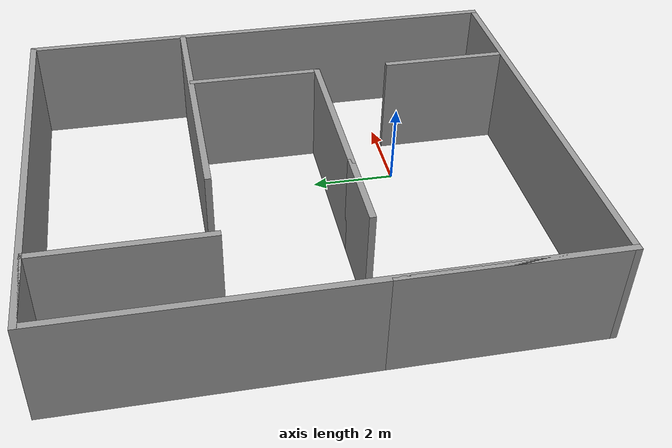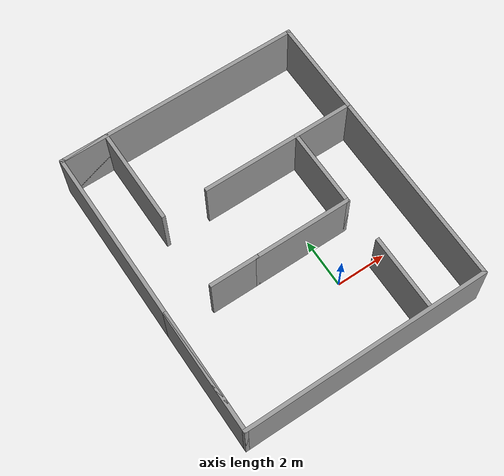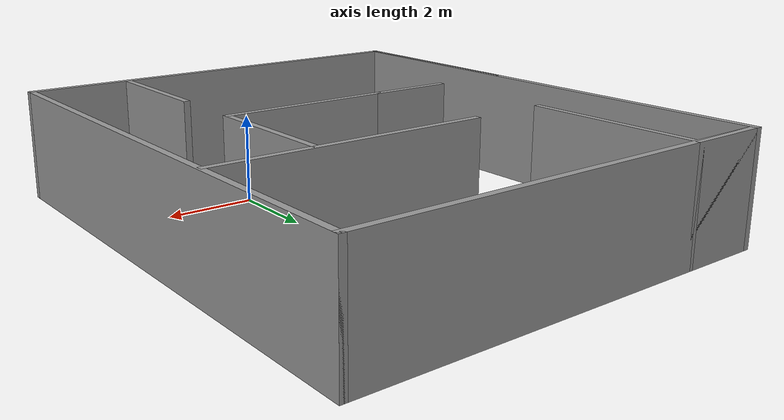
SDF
<?xml version='1.0'?>
<sdf version='1.7'>
  <model name='map'>
    <pose>-1.21374 2.77123 0 0 -0 0</pose>
    <link name='Wall_35'>
      <collision name='Wall_35_Collision'>
        <geometry>
          <box>
            <size>10 0.15 2.5</size>
          </box>
        </geometry>
        <pose>0 0 1.25 0 -0 0</pose>
      </collision>
      <visual name='Wall_35_Visual'>
        <pose>0 0 1.25 0 -0 0</pose>
        <geometry>
          <box>
            <size>10 0.15 2.5</size>
          </box>
        </geometry>
        <material>
          <script>
            <uri>file://media/materials/scripts/gazebo.material</uri>
            <name>Gazebo/Grey</name>
          </script>
          <ambient>1 1 1 1</ambient>
        </material>
        <meta>
          <layer>0</layer>
        </meta>
      </visual>
      <pose>0 5.925 0 0 -0 0</pose>
    </link>
    <link name='Wall_37'>
      <collision name='Wall_37_Collision'>
        <geometry>
          <box>
            <size>12 0.15 2.5</size>
          </box>
        </geometry>
        <pose>0 0 1.25 0 -0 0</pose>
      </collision>
      <visual name='Wall_37_Visual'>
        <pose>0 0 1.25 0 -0 0</pose>
        <geometry>
          <box>
            <size>12 0.15 2.5</size>
          </box>
        </geometry>
        <material>
          <script>
            <uri>file://media/materials/scripts/gazebo.material</uri>
            <name>Gazebo/Grey</name>
          </script>
          <ambient>1 1 1 1</ambient>
        </material>
        <meta>
          <layer>0</layer>
        </meta>
      </visual>
      <pose>4.925 0 0 0 -0 -1.5708</pose>
    </link>
    <link name='Wall_39'>
      <collision name='Wall_39_Collision'>
        <geometry>
          <box>
            <size>10 0.15 2.5</size>
          </box>
        </geometry>
        <pose>0 0 1.25 0 -0 0</pose>
      </collision>
      <visual name='Wall_39_Visual'>
        <pose>0 0 1.25 0 -0 0</pose>
        <geometry>
          <box>
            <size>10 0.15 2.5</size>
          </box>
        </geometry>
        <material>
          <script>
            <uri>file://media/materials/scripts/gazebo.material</uri>
            <name>Gazebo/Grey</name>
          </script>
          <ambient>1 1 1 1</ambient>
        </material>
        <meta>
          <layer>0</layer>
        </meta>
      </visual>
      <pose>0 -5.925 0 0 -0 3.14159</pose>
    </link>
    <link name='Wall_40'>
      <collision name='Wall_40_Collision'>
        <geometry>
          <box>
            <size>12 0.15 2.5</size>
          </box>
        </geometry>
        <pose>0 0 1.25 0 -0 0</pose>
      </collision>
      <visual name='Wall_40_Visual'>
        <pose>0 0 1.25 0 -0 0</pose>
        <geometry>
          <box>
            <size>12 0.15 2.5</size>
          </box>
        </geometry>
        <material>
          <script>
            <uri>file://media/materials/scripts/gazebo.material</uri>
            <name>Gazebo/Grey</name>
          </script>
          <ambient>1 1 1 1</ambient>
        </material>
        <meta>
          <layer>0</layer>
        </meta>
      </visual>
      <pose>-4.925 0 0 0 -0 1.5708</pose>
    </link>
    <link name='Wall_43'>
      <collision name='Wall_43_Collision'>
        <geometry>
          <box>
            <size>2 0.15 2.5</size>
          </box>
        </geometry>
        <pose>0 0 1.25 0 -0 0</pose>
      </collision>
      <visual name='Wall_43_Visual'>
        <pose>0 0 1.25 0 -0 0</pose>
        <geometry>
          <box>
            <size>2 0.15 2.5</size>
          </box>
        </geometry>
        <material>
          <script>
            <uri>file://media/materials/scripts/gazebo.material</uri>
            <name>Gazebo/Grey</name>
          </script>
          <ambient>1 1 1 1</ambient>
        </material>
        <meta>
          <layer>0</layer>
        </meta>
      </visual>
      <pose>-4 5.925 0 0 -0 0</pose>
    </link>
    <link name='Wall_44'>
      <collision name='Wall_44_Collision'>
        <geometry>
          <box>
            <size>4 0.15 2.5</size>
          </box>
        </geometry>
        <pose>0 0 1.25 0 -0 0</pose>
      </collision>
      <visual name='Wall_44_Visual'>
        <pose>0 0 1.25 0 -0 0</pose>
        <geometry>
          <box>
            <size>4 0.15 2.5</size>
          </box>
        </geometry>
        <material>
          <script>
            <uri>file://media/materials/scripts/gazebo.material</uri>
            <name>Gazebo/Grey</name>
          </script>
          <ambient>1 1 1 1</ambient>
        </material>
        <meta>
          <layer>0</layer>
        </meta>
      </visual>
      <pose>-3.075 4 0 0 -0 -1.5708</pose>
    </link>
    <link name='Wall_46'>
      <collision name='Wall_46_Collision'>
        <geometry>
          <box>
            <size>6.25 0.15 2.5</size>
          </box>
        </geometry>
        <pose>0 0 1.25 0 -0 0</pose>
      </collision>
      <visual name='Wall_46_Visual'>
        <pose>0 0 1.25 0 -0 0</pose>
        <geometry>
          <box>
            <size>6.25 0.15 2.5</size>
          </box>
        </geometry>
        <material>
          <script>
            <uri>file://media/materials/scripts/gazebo.material</uri>
            <name>Gazebo/Grey</name>
          </script>
          <ambient>1 1 1 1</ambient>
        </material>
        <meta>
          <layer>0</layer>
        </meta>
      </visual>
      <pose>1.825 2.075 0 0 -0 0</pose>
    </link>
    <link name='Wall_48'>
      <collision name='Wall_48_Collision'>
        <geometry>
          <box>
            <size>5 0.15 2.5</size>
          </box>
        </geometry>
        <pose>0 0 1.25 0 -0 0</pose>
      </collision>
      <visual name='Wall_48_Visual'>
        <pose>0 0 1.25 0 -0 0</pose>
        <geometry>
          <box>
            <size>5 0.15 2.5</size>
          </box>
        </geometry>
        <material>
          <script>
            <uri>file://media/materials/scripts/gazebo.material</uri>
            <name>Gazebo/Grey</name>
          </script>
          <ambient>1 1 1 1</ambient>
        </material>
        <meta>
          <layer>0</layer>
        </meta>
      </visual>
      <pose>-4.925 -3.5 0 0 -0 1.5708</pose>
    </link>
    <link name='Wall_50'>
      <collision name='Wall_50_Collision'>
        <geometry>
          <box>
            <size>2 0.15 2.5</size>
          </box>
        </geometry>
        <pose>0 0 1.25 0 -0 0</pose>
      </collision>
      <visual name='Wall_50_Visual'>
        <pose>0 0 1.25 0 -0 0</pose>
        <geometry>
          <box>
            <size>2 0.15 2.5</size>
          </box>
        </geometry>
        <material>
          <script>
            <uri>file://media/materials/scripts/gazebo.material</uri>
            <name>Gazebo/Grey</name>
          </script>
          <ambient>1 1 1 1</ambient>
        </material>
        <meta>
          <layer>0</layer>
        </meta>
      </visual>
      <pose>-2.15 -1.075 0 0 -0 0</pose>
    </link>
    <link name='Wall_51'>
      <collision name='Wall_51_Collision'>
        <geometry>
          <box>
            <size>4 0.15 2.5</size>
          </box>
        </geometry>
        <pose>0 0 1.25 0 -0 0</pose>
      </collision>
      <visual name='Wall_51_Visual'>
        <pose>0 0 1.25 0 -0 0</pose>
        <geometry>
          <box>
            <size>4 0.15 2.5</size>
          </box>
        </geometry>
        <material>
          <script>
            <uri>file://media/materials/scripts/gazebo.material</uri>
            <name>Gazebo/Grey</name>
          </script>
          <ambient>1 1 1 1</ambient>
        </material>
        <meta>
          <layer>0</layer>
        </meta>
      </visual>
      <pose>0.7 -1.075 0 0 -0 0</pose>
    </link>
    <link name='Wall_52'>
      <collision name='Wall_52_Collision'>
        <geometry>
          <box>
            <size>3.25 0.15 2.5</size>
          </box>
        </geometry>
        <pose>0 0 1.25 0 -0 0</pose>
      </collision>
      <visual name='Wall_52_Visual'>
        <pose>0 0 1.25 0 -0 0</pose>
        <geometry>
          <box>
            <size>3.25 0.15 2.5</size>
          </box>
        </geometry>
        <material>
          <script>
            <uri>file://media/materials/scripts/gazebo.material</uri>
            <name>Gazebo/Grey</name>
          </script>
          <ambient>1 1 1 1</ambient>
        </material>
        <meta>
          <layer>0</layer>
        </meta>
      </visual>
      <pose>2.625 0.475 0 0 -0 1.5708</pose>
    </link>
    <link name='Wall_55'>
      <collision name='Wall_55_Collision'>
        <geometry>
          <box>
            <size>3 0.15 2.5</size>
          </box>
        </geometry>
        <pose>0 0 1.25 0 -0 0</pose>
      </collision>
      <visual name='Wall_55_Visual'>
        <pose>0 0 1.25 0 -0 0</pose>
        <geometry>
          <box>
            <size>3 0.15 2.5</size>
          </box>
        </geometry>
        <material>
          <script>
            <uri>file://media/materials/scripts/gazebo.material</uri>
            <name>Gazebo/Grey</name>
          </script>
          <ambient>1 1 1 1</ambient>
        </material>
        <meta>
          <layer>0</layer>
        </meta>
      </visual>
      <pose>2.625 -4.35 0 0 -0 -1.5708</pose>
    </link>
    <static>1</static>
  </model>
</sdf>
